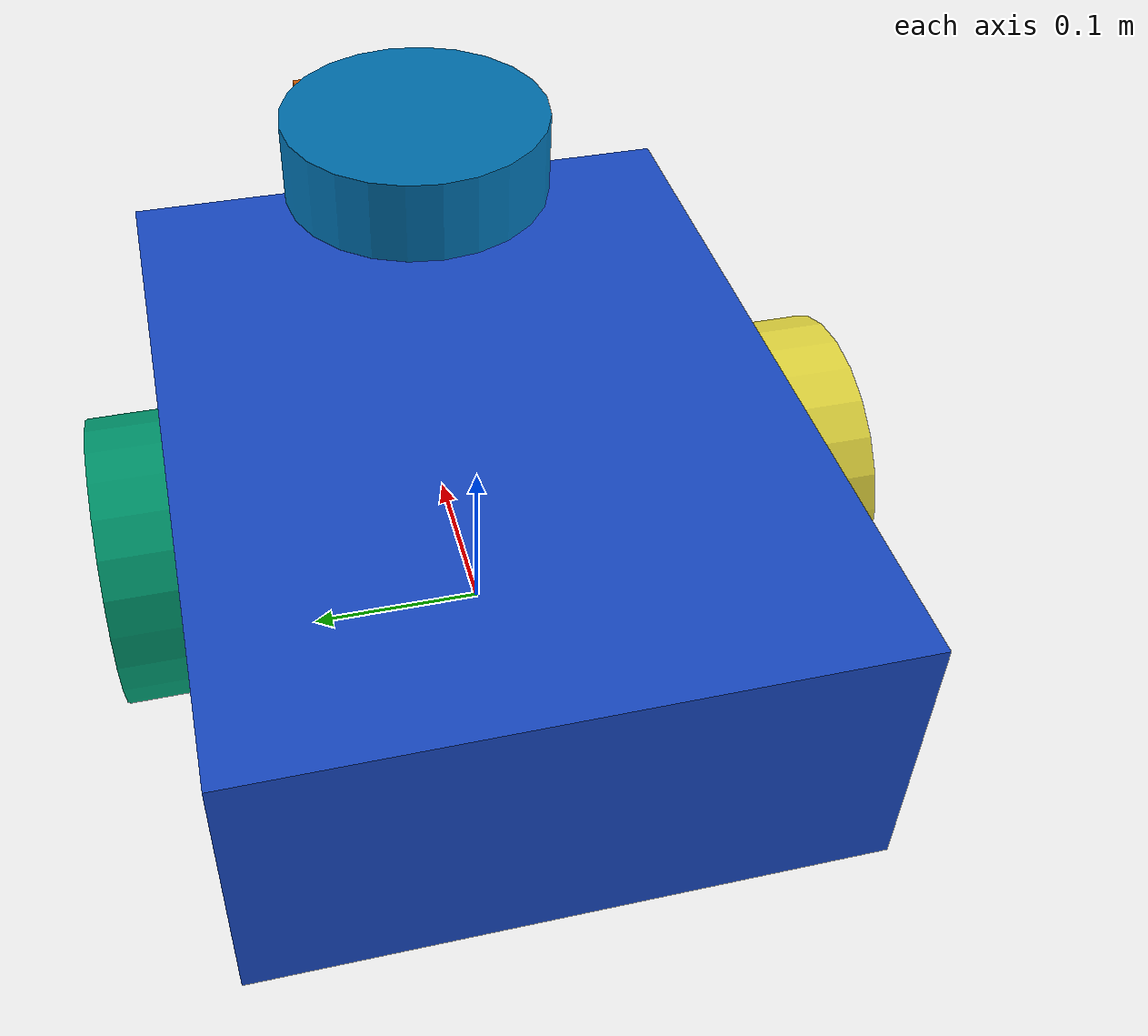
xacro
<?xml version="1.0"?>
<robot xmlns:xacro="http://www.ros.org/wiki/xacro" name="emrmf_mobile_robot">
  <xacro:arg name="robot_name" default="robot_1"/>
  <xacro:arg name="sensor_noise_std" default="0.04"/>
  <xacro:arg name="enable_depth_camera" default="true"/>

  <link name="base_footprint"/>
  <joint name="base_footprint_joint" type="fixed">
    <parent link="base_footprint"/><child link="base_link"/><origin xyz="0 0 0.08" rpy="0 0 0"/>
  </joint>
  <link name="base_link">
    <inertial><mass value="8.0"/><origin xyz="0 0 0"/><inertia ixx="0.08" iyy="0.08" izz="0.12" ixy="0" ixz="0" iyz="0"/></inertial>
    <collision><geometry><box size="0.45 0.34 0.16"/></geometry></collision>
    <visual><geometry><box size="0.45 0.34 0.16"/></geometry><material name="blue"><color rgba="0.1 0.3 0.8 1"/></material></visual>
  </link>

  <link name="left_wheel"><collision><geometry><cylinder radius="0.08" length="0.04"/></geometry></collision><visual><geometry><cylinder radius="0.08" length="0.04"/></geometry></visual><inertial><mass value="0.3"/><inertia ixx="0.001" iyy="0.001" izz="0.001" ixy="0" ixz="0" iyz="0"/></inertial></link>
  <link name="right_wheel"><collision><geometry><cylinder radius="0.08" length="0.04"/></geometry></collision><visual><geometry><cylinder radius="0.08" length="0.04"/></geometry></visual><inertial><mass value="0.3"/><inertia ixx="0.001" iyy="0.001" izz="0.001" ixy="0" ixz="0" iyz="0"/></inertial></link>
  <joint name="left_wheel_joint" type="continuous"><parent link="base_link"/><child link="left_wheel"/><origin xyz="0 0.19 0" rpy="1.5708 0 0"/><axis xyz="0 0 1"/></joint>
  <joint name="right_wheel_joint" type="continuous"><parent link="base_link"/><child link="right_wheel"/><origin xyz="0 -0.19 0" rpy="1.5708 0 0"/><axis xyz="0 0 1"/></joint>

  <link name="laser_link"><visual><geometry><cylinder radius="0.08" length="0.05"/></geometry></visual></link>
  <joint name="laser_joint" type="fixed"><parent link="base_link"/><child link="laser_link"/><origin xyz="0.16 0 0.14" rpy="0 0 0"/></joint>
  <link name="depth_camera_link"><visual><geometry><box size="0.06 0.12 0.04"/></geometry></visual></link>
  <joint name="depth_camera_joint" type="fixed"><parent link="base_link"/><child link="depth_camera_link"/><origin xyz="0.23 0 0.12" rpy="0 0 0"/></joint>

  <gazebo>
    <plugin name="diff_drive" filename="libgazebo_ros_diff_drive.so">
      <ros><namespace>$(arg robot_name)</namespace><remapping>cmd_vel:=cmd_vel</remapping><remapping>odom:=odom</remapping></ros>
      <left_joint>left_wheel_joint</left_joint><right_joint>right_wheel_joint</right_joint>
      <wheel_separation>0.38</wheel_separation><wheel_diameter>0.16</wheel_diameter>
      <publish_odom>true</publish_odom><publish_odom_tf>true</publish_odom_tf><publish_wheel_tf>true</publish_wheel_tf>
      <odometry_frame>odom</odometry_frame><robot_base_frame>base_footprint</robot_base_frame>
      <update_rate>50</update_rate><gaussian_noise>$(arg sensor_noise_std)</gaussian_noise>
    </plugin>
  </gazebo>

  <gazebo reference="laser_link">
    <sensor name="lidar" type="ray">
      <always_on>true</always_on><update_rate>10</update_rate><visualize>false</visualize>
      <ray><scan><horizontal><samples>360</samples><resolution>1</resolution><min_angle>-3.14159</min_angle><max_angle>3.14159</max_angle></horizontal></scan><range><min>0.12</min><max>12.0</max><resolution>0.01</resolution></range><noise><type>gaussian</type><mean>0</mean><stddev>$(arg sensor_noise_std)</stddev></noise></ray>
      <plugin name="gazebo_ros_laser" filename="libgazebo_ros_ray_sensor.so"><ros><namespace>$(arg robot_name)</namespace><remapping>~/out:=scan</remapping></ros><output_type>sensor_msgs/LaserScan</output_type><frame_name>laser_link</frame_name></plugin>
    </sensor>
  </gazebo>

  <gazebo reference="depth_camera_link">
    <sensor name="depth_camera" type="depth">
      <always_on>$(arg enable_depth_camera)</always_on><update_rate>8</update_rate><camera><horizontal_fov>1.047</horizontal_fov><image><width>320</width><height>240</height><format>R8G8B8</format></image><clip><near>0.2</near><far>8.0</far></clip><noise><type>gaussian</type><mean>0</mean><stddev>$(arg sensor_noise_std)</stddev></noise></camera>
      <plugin name="gazebo_ros_depth_camera" filename="libgazebo_ros_camera.so"><ros><namespace>$(arg robot_name)</namespace></ros><frame_name>depth_camera_link</frame_name><camera_name>depth_camera</camera_name></plugin>
    </sensor>
  </gazebo>
</robot>
